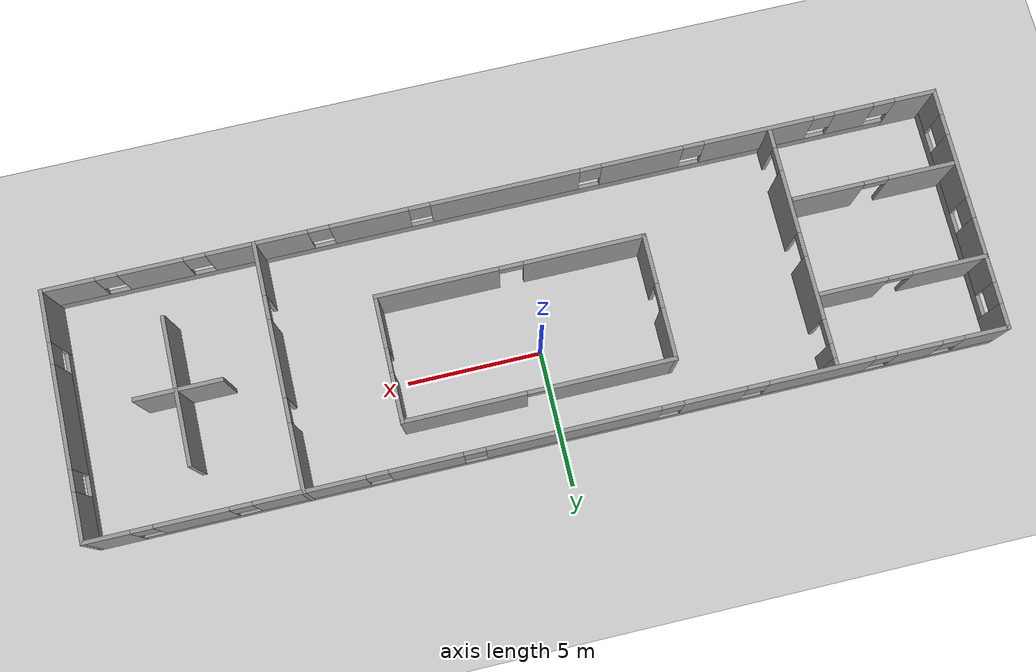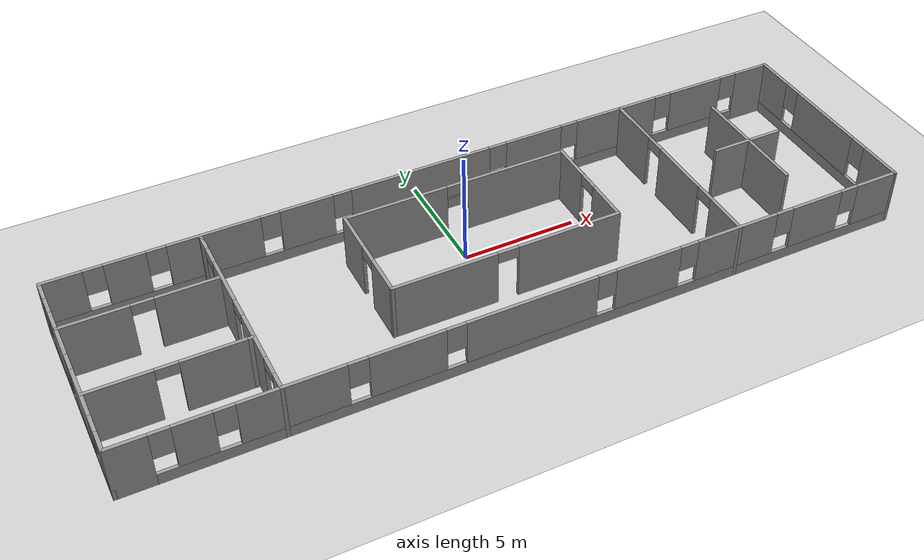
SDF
<sdf version="1.6">
 <world name="__default__">
  <gravity>0 0 -9.8</gravity>
  <magnetic_field>6e-06 2.3e-05 -4.2e-05</magnetic_field>
  <atmosphere type="adiabatic"/>
  <physics name="default_physics" default="0" type="ode">
   <max_step_size>0.001</max_step_size>
   <real_time_factor>1</real_time_factor>
   <real_time_update_rate>1000</real_time_update_rate>
  </physics>
  <scene><ambient>0.4 0.4 0.4 1</ambient><background>0.7 0.7 0.7 1</background><shadows>1</shadows></scene>
  <spherical_coordinates>
   <surface_model>EARTH_WGS84</surface_model>
   <latitude_deg>0</latitude_deg>
   <longitude_deg>0</longitude_deg>
   <elevation>0</elevation>
   <heading_deg>0</heading_deg>
  </spherical_coordinates>
  <model name="TakeTwo">
   <pose>0.369963 -1.2485 0 0 -0 0</pose>
   <link name="Wall_1">
    <pose>1e-06 -4.55 0 0 -0 0</pose>
    <visual name="Wall_1_Visual_0">
     <pose>-15.8307 0 1.25 0 -0 0</pose>
     <geometry><box><size>1.58863 0.15 2.5</size></box></geometry>
     <material>
      <script><uri>file://media/materials/scripts/gazebo.material</uri><name>Gazebo/Grey</name></script>
      <ambient>1 1 1 1</ambient>
     </material>
     <meta><layer>0</layer></meta>
    </visual>
    <collision name="Wall_1_Collision_0">
     <geometry><box><size>1.58863 0.15 2.5</size></box></geometry>
     <pose>-15.8307 0 1.25 0 -0 0</pose>
    </collision>
    <visual name="Wall_1_Visual_1">
     <pose>0.794313 0 0.25 0 -0 0</pose>
     <geometry><box><size>31.6614 0.15 0.5</size></box></geometry>
     <material>
      <script><uri>file://media/materials/scripts/gazebo.material</uri><name>Gazebo/Grey</name></script>
      <ambient>1 1 1 1</ambient>
     </material>
     <meta><layer>0</layer></meta>
    </visual>
    <collision name="Wall_1_Collision_1">
     <geometry><box><size>31.6614 0.15 0.5</size></box></geometry>
     <pose>0.794313 0 0.25 0 -0 0</pose>
    </collision>
    <visual name="Wall_1_Visual_2">
     <pose>-13.4926 0 1.5 0 -0 0</pose>
     <geometry><box><size>1.48762 0.15 2</size></box></geometry>
     <material>
      <script><uri>file://media/materials/scripts/gazebo.material</uri><name>Gazebo/Grey</name></script>
      <ambient>1 1 1 1</ambient>
     </material>
     <meta><layer>0</layer></meta>
    </visual>
    <collision name="Wall_1_Collision_2">
     <geometry><box><size>1.48762 0.15 2</size></box></geometry>
     <pose>-13.4926 0 1.5 0 -0 0</pose>
    </collision>
    <visual name="Wall_1_Visual_3">
     <pose>-9.88824 0 1.5 0 -0 0</pose>
     <geometry><box><size>4.12104 0.15 2</size></box></geometry>
     <material>
      <script><uri>file://media/materials/scripts/gazebo.material</uri><name>Gazebo/Grey</name></script>
      <ambient>1 1 1 1</ambient>
     </material>
     <meta><layer>0</layer></meta>
    </visual>
    <collision name="Wall_1_Collision_3">
     <geometry><box><size>4.12104 0.15 2</size></box></geometry>
     <pose>-9.88824 0 1.5 0 -0 0</pose>
    </collision>
    <visual name="Wall_1_Visual_4">
     <pose>-5.4992 0 1.5 0 -0 0</pose>
     <geometry><box><size>3.05703 0.15 2</size></box></geometry>
     <material>
      <script><uri>file://media/materials/scripts/gazebo.material</uri><name>Gazebo/Grey</name></script>
      <ambient>1 1 1 1</ambient>
     </material>
     <meta><layer>0</layer></meta>
    </visual>
    <collision name="Wall_1_Collision_4">
     <geometry><box><size>3.05703 0.15 2</size></box></geometry>
     <pose>-5.4992 0 1.5 0 -0 0</pose>
    </collision>
    <visual name="Wall_1_Visual_5">
     <pose>-0.391967 0 1.5 0 -0 0</pose>
     <geometry><box><size>5.55745 0.15 2</size></box></geometry>
     <material>
      <script><uri>file://media/materials/scripts/gazebo.material</uri><name>Gazebo/Grey</name></script>
      <ambient>1 1 1 1</ambient>
     </material>
     <meta><layer>0</layer></meta>
    </visual>
    <collision name="Wall_1_Collision_5">
     <geometry><box><size>5.55745 0.15 2</size></box></geometry>
     <pose>-0.391967 0 1.5 0 -0 0</pose>
    </collision>
    <visual name="Wall_1_Visual_6">
     <pose>4.63547 0 1.5 0 -0 0</pose>
     <geometry><box><size>2.89743 0.15 2</size></box></geometry>
     <material>
      <script><uri>file://media/materials/scripts/gazebo.material</uri><name>Gazebo/Grey</name></script>
      <ambient>1 1 1 1</ambient>
     </material>
     <meta><layer>0</layer></meta>
    </visual>
    <collision name="Wall_1_Collision_6">
     <geometry><box><size>2.89743 0.15 2</size></box></geometry>
     <pose>4.63547 0 1.5 0 -0 0</pose>
    </collision>
    <visual name="Wall_1_Visual_7">
     <pose>8.7452 0 1.5 0 -0 0</pose>
     <geometry><box><size>3.72203 0.15 2</size></box></geometry>
     <material>
      <script><uri>file://media/materials/scripts/gazebo.material</uri><name>Gazebo/Grey</name></script>
      <ambient>1 1 1 1</ambient>
     </material>
     <meta><layer>0</layer></meta>
    </visual>
    <collision name="Wall_1_Collision_7">
     <geometry><box><size>3.72203 0.15 2</size></box></geometry>
     <pose>8.7452 0 1.5 0 -0 0</pose>
    </collision>
    <visual name="Wall_1_Visual_8">
     <pose>12.6022 0 1.5 0 -0 0</pose>
     <geometry><box><size>2.39202 0.15 2</size></box></geometry>
     <material>
      <script><uri>file://media/materials/scripts/gazebo.material</uri><name>Gazebo/Grey</name></script>
      <ambient>1 1 1 1</ambient>
     </material>
     <meta><layer>0</layer></meta>
    </visual>
    <collision name="Wall_1_Collision_8">
     <geometry><box><size>2.39202 0.15 2</size></box></geometry>
     <pose>12.6022 0 1.5 0 -0 0</pose>
    </collision>
    <visual name="Wall_1_Visual_9">
     <pose>15.6116 0 1.5 0 -0 0</pose>
     <geometry><box><size>2.02676 0.15 2</size></box></geometry>
     <material>
      <script><uri>file://media/materials/scripts/gazebo.material</uri><name>Gazebo/Grey</name></script>
      <ambient>1 1 1 1</ambient>
     </material>
     <meta><layer>0</layer></meta>
    </visual>
    <collision name="Wall_1_Collision_9">
     <geometry><box><size>2.02676 0.15 2</size></box></geometry>
     <pose>15.6116 0 1.5 0 -0 0</pose>
    </collision>
    <visual name="Wall_1_Visual_10">
     <pose>-14.6364 0 1.9 0 -0 0</pose>
     <geometry><box><size>0.8 0.15 1.2</size></box></geometry>
     <material>
      <script><uri>file://media/materials/scripts/gazebo.material</uri><name>Gazebo/Grey</name></script>
      <ambient>1 1 1 1</ambient>
     </material>
     <meta><layer>0</layer></meta>
    </visual>
    <collision name="Wall_1_Collision_10">
     <geometry><box><size>0.8 0.15 1.2</size></box></geometry>
     <pose>-14.6364 0 1.9 0 -0 0</pose>
    </collision>
    <visual name="Wall_1_Visual_11">
     <pose>-12.3488 0 1.9 0 -0 0</pose>
     <geometry><box><size>0.8 0.15 1.2</size></box></geometry>
     <material>
      <script><uri>file://media/materials/scripts/gazebo.material</uri><name>Gazebo/Grey</name></script>
      <ambient>1 1 1 1</ambient>
     </material>
     <meta><layer>0</layer></meta>
    </visual>
    <collision name="Wall_1_Collision_11">
     <geometry><box><size>0.8 0.15 1.2</size></box></geometry>
     <pose>-12.3488 0 1.9 0 -0 0</pose>
    </collision>
    <visual name="Wall_1_Visual_12">
     <pose>-7.42772 0 1.9 0 -0 0</pose>
     <geometry><box><size>0.8 0.15 1.2</size></box></geometry>
     <material>
      <script><uri>file://media/materials/scripts/gazebo.material</uri><name>Gazebo/Grey</name></script>
      <ambient>1 1 1 1</ambient>
     </material>
     <meta><layer>0</layer></meta>
    </visual>
    <collision name="Wall_1_Collision_12">
     <geometry><box><size>0.8 0.15 1.2</size></box></geometry>
     <pose>-7.42772 0 1.9 0 -0 0</pose>
    </collision>
    <visual name="Wall_1_Visual_13">
     <pose>-3.57069 0 1.9 0 -0 0</pose>
     <geometry><box><size>0.8 0.15 1.2</size></box></geometry>
     <material>
      <script><uri>file://media/materials/scripts/gazebo.material</uri><name>Gazebo/Grey</name></script>
      <ambient>1 1 1 1</ambient>
     </material>
     <meta><layer>0</layer></meta>
    </visual>
    <collision name="Wall_1_Collision_13">
     <geometry><box><size>0.8 0.15 1.2</size></box></geometry>
     <pose>-3.57069 0 1.9 0 -0 0</pose>
    </collision>
    <visual name="Wall_1_Visual_14">
     <pose>2.78676 0 1.9 0 -0 0</pose>
     <geometry><box><size>0.8 0.15 1.2</size></box></geometry>
     <material>
      <script><uri>file://media/materials/scripts/gazebo.material</uri><name>Gazebo/Grey</name></script>
      <ambient>1 1 1 1</ambient>
     </material>
     <meta><layer>0</layer></meta>
    </visual>
    <collision name="Wall_1_Collision_14">
     <geometry><box><size>0.8 0.15 1.2</size></box></geometry>
     <pose>2.78676 0 1.9 0 -0 0</pose>
    </collision>
    <visual name="Wall_1_Visual_15">
     <pose>6.48419 0 1.9 0 -0 0</pose>
     <geometry><box><size>0.8 0.15 1.2</size></box></geometry>
     <material>
      <script><uri>file://media/materials/scripts/gazebo.material</uri><name>Gazebo/Grey</name></script>
      <ambient>1 1 1 1</ambient>
     </material>
     <meta><layer>0</layer></meta>
    </visual>
    <collision name="Wall_1_Collision_15">
     <geometry><box><size>0.8 0.15 1.2</size></box></geometry>
     <pose>6.48419 0 1.9 0 -0 0</pose>
    </collision>
    <visual name="Wall_1_Visual_16">
     <pose>11.0062 0 1.9 0 -0 0</pose>
     <geometry><box><size>0.8 0.15 1.2</size></box></geometry>
     <material>
      <script><uri>file://media/materials/scripts/gazebo.material</uri><name>Gazebo/Grey</name></script>
      <ambient>1 1 1 1</ambient>
     </material>
     <meta><layer>0</layer></meta>
    </visual>
    <collision name="Wall_1_Collision_16">
     <geometry><box><size>0.8 0.15 1.2</size></box></geometry>
     <pose>11.0062 0 1.9 0 -0 0</pose>
    </collision>
    <visual name="Wall_1_Visual_17">
     <pose>14.1982 0 1.9 0 -0 0</pose>
     <geometry><box><size>0.8 0.15 1.2</size></box></geometry>
     <material>
      <script><uri>file://media/materials/scripts/gazebo.material</uri><name>Gazebo/Grey</name></script>
      <ambient>1 1 1 1</ambient>
     </material>
     <meta><layer>0</layer></meta>
    </visual>
    <collision name="Wall_1_Collision_17">
     <geometry><box><size>0.8 0.15 1.2</size></box></geometry>
     <pose>14.1982 0 1.9 0 -0 0</pose>
    </collision>
   </link>
   <link name="Wall_11">
    <pose>-10.279 -0.125 0 0 -0 1.5708</pose>
    <visual name="Wall_11_Visual_0">
     <pose>-4.07739 0 1.25 0 -0 0</pose>
     <geometry><box><size>0.845229 0.15 2.5</size></box></geometry>
     <material>
      <script><uri>file://media/materials/scripts/gazebo.material</uri><name>Gazebo/Grey</name></script>
      <ambient>1 1 1 1</ambient>
     </material>
     <meta><layer>0</layer></meta>
    </visual>
    <collision name="Wall_11_Collision_0">
     <geometry><box><size>0.845229 0.15 2.5</size></box></geometry>
     <pose>-4.07739 0 1.25 0 -0 0</pose>
    </collision>
    <visual name="Wall_11_Visual_1">
     <pose>-1.55556 0 1.25 0 -0 0</pose>
     <geometry><box><size>2.39843 0.15 2.5</size></box></geometry>
     <material>
      <script><uri>file://media/materials/scripts/gazebo.material</uri><name>Gazebo/Grey</name></script>
      <ambient>1 1 1 1</ambient>
     </material>
     <meta><layer>0</layer></meta>
    </visual>
    <collision name="Wall_11_Collision_1">
     <geometry><box><size>2.39843 0.15 2.5</size></box></geometry>
     <pose>-1.55556 0 1.25 0 -0 0</pose>
    </collision>
    <visual name="Wall_11_Visual_2">
     <pose>1.72957 0 1.25 0 -0 0</pose>
     <geometry><box><size>2.37182 0.15 2.5</size></box></geometry>
     <material>
      <script><uri>file://media/materials/scripts/gazebo.material</uri><name>Gazebo/Grey</name></script>
      <ambient>1 1 1 1</ambient>
     </material>
     <meta><layer>0</layer></meta>
    </visual>
    <collision name="Wall_11_Collision_2">
     <geometry><box><size>2.37182 0.15 2.5</size></box></geometry>
     <pose>1.72957 0 1.25 0 -0 0</pose>
    </collision>
    <visual name="Wall_11_Visual_3">
     <pose>4.15774 0 1.25 0 -0 0</pose>
     <geometry><box><size>0.684522 0.15 2.5</size></box></geometry>
     <material>
      <script><uri>file://media/materials/scripts/gazebo.material</uri><name>Gazebo/Grey</name></script>
      <ambient>1 1 1 1</ambient>
     </material>
     <meta><layer>0</layer></meta>
    </visual>
    <collision name="Wall_11_Collision_3">
     <geometry><box><size>0.684522 0.15 2.5</size></box></geometry>
     <pose>4.15774 0 1.25 0 -0 0</pose>
    </collision>
    <visual name="Wall_11_Visual_4">
     <pose>-3.20477 0 2.25 0 -0 0</pose>
     <geometry><box><size>0.9 0.15 0.5</size></box></geometry>
     <material>
      <script><uri>file://media/materials/scripts/gazebo.material</uri><name>Gazebo/Grey</name></script>
      <ambient>1 1 1 1</ambient>
     </material>
     <meta><layer>0</layer></meta>
    </visual>
    <collision name="Wall_11_Collision_4">
     <geometry><box><size>0.9 0.15 0.5</size></box></geometry>
     <pose>-3.20477 0 2.25 0 -0 0</pose>
    </collision>
    <visual name="Wall_11_Visual_5">
     <pose>0.093653 0 2.25 0 -0 0</pose>
     <geometry><box><size>0.9 0.15 0.5</size></box></geometry>
     <material>
      <script><uri>file://media/materials/scripts/gazebo.material</uri><name>Gazebo/Grey</name></script>
      <ambient>1 1 1 1</ambient>
     </material>
     <meta><layer>0</layer></meta>
    </visual>
    <collision name="Wall_11_Collision_5">
     <geometry><box><size>0.9 0.15 0.5</size></box></geometry>
     <pose>0.093653 0 2.25 0 -0 0</pose>
    </collision>
    <visual name="Wall_11_Visual_6">
     <pose>3.36548 0 2.25 0 -0 0</pose>
     <geometry><box><size>0.9 0.15 0.5</size></box></geometry>
     <material>
      <script><uri>file://media/materials/scripts/gazebo.material</uri><name>Gazebo/Grey</name></script>
      <ambient>1 1 1 1</ambient>
     </material>
     <meta><layer>0</layer></meta>
    </visual>
    <collision name="Wall_11_Collision_6">
     <geometry><box><size>0.9 0.15 0.5</size></box></geometry>
     <pose>3.36548 0 2.25 0 -0 0</pose>
    </collision>
   </link>
   <link name="Wall_12">
    <collision name="Wall_12_Collision">
     <geometry><box><size>0.25 0.15 2.5</size></box></geometry>
     <pose>0 0 1.25 0 -0 0</pose>
    </collision>
    <visual name="Wall_12_Visual">
     <pose>0 0 1.25 0 -0 0</pose>
     <geometry><box><size>0.25 0.15 2.5</size></box></geometry>
     <material>
      <script><uri>file://media/materials/scripts/gazebo.material</uri><name>Gazebo/Grey</name></script>
      <ambient>1 1 1 1</ambient>
     </material>
     <meta><layer>0</layer></meta>
    </visual>
    <pose>-10.279 4.35 0 0 -0 1.5708</pose>
   </link>
   <link name="Wall_14">
    <pose>8.83989 0 0 0 -0 1.5708</pose>
    <visual name="Wall_14_Visual_0">
     <pose>-3.60388 0 1.25 0 -0 0</pose>
     <geometry><box><size>2.04224 0.15 2.5</size></box></geometry>
     <material>
      <script><uri>file://media/materials/scripts/gazebo.material</uri><name>Gazebo/Grey</name></script>
      <ambient>1 1 1 1</ambient>
     </material>
     <meta><layer>0</layer></meta>
    </visual>
    <collision name="Wall_14_Collision_0">
     <geometry><box><size>2.04224 0.15 2.5</size></box></geometry>
     <pose>-3.60388 0 1.25 0 -0 0</pose>
    </collision>
    <visual name="Wall_14_Visual_1">
     <pose>-0.244148 0 1.25 0 -0 0</pose>
     <geometry><box><size>2.87723 0.15 2.5</size></box></geometry>
     <material>
      <script><uri>file://media/materials/scripts/gazebo.material</uri><name>Gazebo/Grey</name></script>
      <ambient>1 1 1 1</ambient>
     </material>
     <meta><layer>0</layer></meta>
    </visual>
    <collision name="Wall_14_Collision_1">
     <geometry><box><size>2.87723 0.15 2.5</size></box></geometry>
     <pose>-0.244148 0 1.25 0 -0 0</pose>
    </collision>
    <visual name="Wall_14_Visual_2">
     <pose>3.35973 0 1.25 0 -0 0</pose>
     <geometry><box><size>2.53053 0.15 2.5</size></box></geometry>
     <material>
      <script><uri>file://media/materials/scripts/gazebo.material</uri><name>Gazebo/Grey</name></script>
      <ambient>1 1 1 1</ambient>
     </material>
     <meta><layer>0</layer></meta>
    </visual>
    <collision name="Wall_14_Collision_2">
     <geometry><box><size>2.53053 0.15 2.5</size></box></geometry>
     <pose>3.35973 0 1.25 0 -0 0</pose>
    </collision>
    <visual name="Wall_14_Visual_3">
     <pose>-2.13276 0 2.25 0 -0 0</pose>
     <geometry><box><size>0.9 0.15 0.5</size></box></geometry>
     <material>
      <script><uri>file://media/materials/scripts/gazebo.material</uri><name>Gazebo/Grey</name></script>
      <ambient>1 1 1 1</ambient>
     </material>
     <meta><layer>0</layer></meta>
    </visual>
    <collision name="Wall_14_Collision_3">
     <geometry><box><size>0.9 0.15 0.5</size></box></geometry>
     <pose>-2.13276 0 2.25 0 -0 0</pose>
    </collision>
    <visual name="Wall_14_Visual_4">
     <pose>1.64447 0 2.25 0 -0 0</pose>
     <geometry><box><size>0.9 0.15 0.5</size></box></geometry>
     <material>
      <script><uri>file://media/materials/scripts/gazebo.material</uri><name>Gazebo/Grey</name></script>
      <ambient>1 1 1 1</ambient>
     </material>
     <meta><layer>0</layer></meta>
    </visual>
    <collision name="Wall_14_Collision_4">
     <geometry><box><size>0.9 0.15 0.5</size></box></geometry>
     <pose>1.64447 0 2.25 0 -0 0</pose>
    </collision>
   </link>
   <link name="Wall_16">
    <pose>-13.4694 1.87395 0 0 -0 0</pose>
    <visual name="Wall_16_Visual_0">
     <pose>-1.73258 0 1.25 0 -0 0</pose>
     <geometry><box><size>2.78485 0.15 2.5</size></box></geometry>
     <material>
      <script><uri>file://media/materials/scripts/gazebo.material</uri><name>Gazebo/Grey</name></script>
      <ambient>1 1 1 1</ambient>
     </material>
     <meta><layer>0</layer></meta>
    </visual>
    <collision name="Wall_16_Collision_0">
     <geometry><box><size>2.78485 0.15 2.5</size></box></geometry>
     <pose>-1.73258 0 1.25 0 -0 0</pose>
    </collision>
    <visual name="Wall_16_Visual_1">
     <pose>1.84242 0 1.25 0 -0 0</pose>
     <geometry><box><size>2.56515 0.15 2.5</size></box></geometry>
     <material>
      <script><uri>file://media/materials/scripts/gazebo.material</uri><name>Gazebo/Grey</name></script>
      <ambient>1 1 1 1</ambient>
     </material>
     <meta><layer>0</layer></meta>
    </visual>
    <collision name="Wall_16_Collision_1">
     <geometry><box><size>2.56515 0.15 2.5</size></box></geometry>
     <pose>1.84242 0 1.25 0 -0 0</pose>
    </collision>
    <visual name="Wall_16_Visual_2">
     <pose>0.109846 0 2.25 0 -0 0</pose>
     <geometry><box><size>0.9 0.15 0.5</size></box></geometry>
     <material>
      <script><uri>file://media/materials/scripts/gazebo.material</uri><name>Gazebo/Grey</name></script>
      <ambient>1 1 1 1</ambient>
     </material>
     <meta><layer>0</layer></meta>
    </visual>
    <collision name="Wall_16_Collision_2">
     <geometry><box><size>0.9 0.15 0.5</size></box></geometry>
     <pose>0.109846 0 2.25 0 -0 0</pose>
    </collision>
   </link>
   <link name="Wall_18">
    <pose>-13.5 -1.7357 0 0 -0 0</pose>
    <visual name="Wall_18_Visual_0">
     <pose>-1.79708 0 1.25 0 -0 0</pose>
     <geometry><box><size>2.65584 0.15 2.5</size></box></geometry>
     <material>
      <script><uri>file://media/materials/scripts/gazebo.material</uri><name>Gazebo/Grey</name></script>
      <ambient>1 1 1 1</ambient>
     </material>
     <meta><layer>0</layer></meta>
    </visual>
    <collision name="Wall_18_Collision_0">
     <geometry><box><size>2.65584 0.15 2.5</size></box></geometry>
     <pose>-1.79708 0 1.25 0 -0 0</pose>
    </collision>
    <visual name="Wall_18_Visual_1">
     <pose>1.77792 0 1.25 0 -0 0</pose>
     <geometry><box><size>2.69416 0.15 2.5</size></box></geometry>
     <material>
      <script><uri>file://media/materials/scripts/gazebo.material</uri><name>Gazebo/Grey</name></script>
      <ambient>1 1 1 1</ambient>
     </material>
     <meta><layer>0</layer></meta>
    </visual>
    <collision name="Wall_18_Collision_1">
     <geometry><box><size>2.69416 0.15 2.5</size></box></geometry>
     <pose>1.77792 0 1.25 0 -0 0</pose>
    </collision>
    <visual name="Wall_18_Visual_2">
     <pose>-0.019165 0 2.25 0 -0 0</pose>
     <geometry><box><size>0.9 0.15 0.5</size></box></geometry>
     <material>
      <script><uri>file://media/materials/scripts/gazebo.material</uri><name>Gazebo/Grey</name></script>
      <ambient>1 1 1 1</ambient>
     </material>
     <meta><layer>0</layer></meta>
    </visual>
    <collision name="Wall_18_Collision_2">
     <geometry><box><size>0.9 0.15 0.5</size></box></geometry>
     <pose>-0.019165 0 2.25 0 -0 0</pose>
    </collision>
   </link>
   <link name="Wall_19">
    <collision name="Wall_19_Collision">
     <geometry><box><size>0.25 0.15 2.5</size></box></geometry>
     <pose>0 0 1.25 0 -0 0</pose>
    </collision>
    <visual name="Wall_19_Visual">
     <pose>0 0 1.25 0 -0 0</pose>
     <geometry><box><size>0.25 0.15 2.5</size></box></geometry>
     <material>
      <script><uri>file://media/materials/scripts/gazebo.material</uri><name>Gazebo/Grey</name></script>
      <ambient>1 1 1 1</ambient>
     </material>
     <meta><layer>0</layer></meta>
    </visual>
    <pose>-10.4 -1.7357 0 0 -0 0</pose>
   </link>
   <link name="Wall_2">
    <pose>16.55 0 0 0 -0 1.5708</pose>
    <visual name="Wall_2_Visual_0">
     <pose>-3.63208 0 1.25 0 -0 0</pose>
     <geometry><box><size>1.98584 0.15 2.5</size></box></geometry>
     <material>
      <script><uri>file://media/materials/scripts/gazebo.material</uri><name>Gazebo/Grey</name></script>
      <ambient>1 1 1 1</ambient>
     </material>
     <meta><layer>0</layer></meta>
    </visual>
    <collision name="Wall_2_Collision_0">
     <geometry><box><size>1.98584 0.15 2.5</size></box></geometry>
     <pose>-3.63208 0 1.25 0 -0 0</pose>
    </collision>
    <visual name="Wall_2_Visual_1">
     <pose>0.992918 0 0.25 0 -0 0</pose>
     <geometry><box><size>7.26416 0.15 0.5</size></box></geometry>
     <material>
      <script><uri>file://media/materials/scripts/gazebo.material</uri><name>Gazebo/Grey</name></script>
      <ambient>1 1 1 1</ambient>
     </material>
     <meta><layer>0</layer></meta>
    </visual>
    <collision name="Wall_2_Collision_1">
     <geometry><box><size>7.26416 0.15 0.5</size></box></geometry>
     <pose>0.992918 0 0.25 0 -0 0</pose>
    </collision>
    <visual name="Wall_2_Visual_2">
     <pose>0.061754 0 1.5 0 -0 0</pose>
     <geometry><box><size>3.80183 0.15 2</size></box></geometry>
     <material>
      <script><uri>file://media/materials/scripts/gazebo.material</uri><name>Gazebo/Grey</name></script>
      <ambient>1 1 1 1</ambient>
     </material>
     <meta><layer>0</layer></meta>
    </visual>
    <collision name="Wall_2_Collision_2">
     <geometry><box><size>3.80183 0.15 2</size></box></geometry>
     <pose>0.061754 0 1.5 0 -0 0</pose>
    </collision>
    <visual name="Wall_2_Visual_3">
     <pose>3.69384 0 1.5 0 -0 0</pose>
     <geometry><box><size>1.86233 0.15 2</size></box></geometry>
     <material>
      <script><uri>file://media/materials/scripts/gazebo.material</uri><name>Gazebo/Grey</name></script>
      <ambient>1 1 1 1</ambient>
     </material>
     <meta><layer>0</layer></meta>
    </visual>
    <collision name="Wall_2_Collision_3">
     <geometry><box><size>1.86233 0.15 2</size></box></geometry>
     <pose>3.69384 0 1.5 0 -0 0</pose>
    </collision>
    <visual name="Wall_2_Visual_4">
     <pose>-2.23916 0 1.9 0 -0 0</pose>
     <geometry><box><size>0.8 0.15 1.2</size></box></geometry>
     <material>
      <script><uri>file://media/materials/scripts/gazebo.material</uri><name>Gazebo/Grey</name></script>
      <ambient>1 1 1 1</ambient>
     </material>
     <meta><layer>0</layer></meta>
    </visual>
    <collision name="Wall_2_Collision_4">
     <geometry><box><size>0.8 0.15 1.2</size></box></geometry>
     <pose>-2.23916 0 1.9 0 -0 0</pose>
    </collision>
    <visual name="Wall_2_Visual_5">
     <pose>2.36267 0 1.9 0 -0 0</pose>
     <geometry><box><size>0.8 0.15 1.2</size></box></geometry>
     <material>
      <script><uri>file://media/materials/scripts/gazebo.material</uri><name>Gazebo/Grey</name></script>
      <ambient>1 1 1 1</ambient>
     </material>
     <meta><layer>0</layer></meta>
    </visual>
    <collision name="Wall_2_Collision_5">
     <geometry><box><size>0.8 0.15 1.2</size></box></geometry>
     <pose>2.36267 0 1.9 0 -0 0</pose>
    </collision>
   </link>
   <link name="Wall_21">
    <collision name="Wall_21_Collision">
     <geometry><box><size>5.5 0.15 2.5</size></box></geometry>
     <pose>0 0 1.25 0 -0 0</pose>
    </collision>
    <visual name="Wall_21_Visual">
     <pose>0 0 1.25 0 -0 0</pose>
     <geometry><box><size>5.5 0.15 2.5</size></box></geometry>
     <material>
      <script><uri>file://media/materials/scripts/gazebo.material</uri><name>Gazebo/Grey</name></script>
      <ambient>1 1 1 1</ambient>
     </material>
     <meta><layer>0</layer></meta>
    </visual>
    <pose>12.4958 0.060074 0 0 0 -1.5708</pose>
   </link>
   <link name="Wall_23">
    <collision name="Wall_23_Collision">
     <geometry><box><size>3.25 0.15 2.5</size></box></geometry>
     <pose>0 0 1.25 0 -0 0</pose>
    </collision>
    <visual name="Wall_23_Visual">
     <pose>0 0 1.25 0 -0 0</pose>
     <geometry><box><size>3.25 0.15 2.5</size></box></geometry>
     <material>
      <script><uri>file://media/materials/scripts/gazebo.material</uri><name>Gazebo/Grey</name></script>
      <ambient>1 1 1 1</ambient>
     </material>
     <meta><layer>0</layer></meta>
    </visual>
    <pose>12.4232 0.048454 0 0 -0 0</pose>
   </link>
   <link name="Wall_3">
    <pose>1e-06 4.55 0 0 -0 3.14159</pose>
    <visual name="Wall_3_Visual_0">
     <pose>-15.7579 0 1.25 0 -0 0</pose>
     <geometry><box><size>1.73416 0.15 2.5</size></box></geometry>
     <material>
      <script><uri>file://media/materials/scripts/gazebo.material</uri><name>Gazebo/Grey</name></script>
      <ambient>1 1 1 1</ambient>
     </material>
     <meta><layer>0</layer></meta>
    </visual>
    <collision name="Wall_3_Collision_0">
     <geometry><box><size>1.73416 0.15 2.5</size></box></geometry>
     <pose>-15.7579 0 1.25 0 -0 0</pose>
    </collision>
    <visual name="Wall_3_Visual_1">
     <pose>0.867078 0 0.25 0 -0 0</pose>
     <geometry><box><size>31.5158 0.15 0.5</size></box></geometry>
     <material>
      <script><uri>file://media/materials/scripts/gazebo.material</uri><name>Gazebo/Grey</name></script>
      <ambient>1 1 1 1</ambient>
     </material>
     <meta><layer>0</layer></meta>
    </visual>
    <collision name="Wall_3_Collision_1">
     <geometry><box><size>31.5158 0.15 0.5</size></box></geometry>
     <pose>0.867078 0 0.25 0 -0 0</pose>
    </collision>
    <visual name="Wall_3_Visual_2">
     <pose>-12.7618 0 1.5 0 -0 0</pose>
     <geometry><box><size>2.65803 0.15 2</size></box></geometry>
     <material>
      <script><uri>file://media/materials/scripts/gazebo.material</uri><name>Gazebo/Grey</name></script>
      <ambient>1 1 1 1</ambient>
     </material>
     <meta><layer>0</layer></meta>
    </visual>
    <collision name="Wall_3_Collision_2">
     <geometry><box><size>2.65803 0.15 2</size></box></geometry>
     <pose>-12.7618 0 1.5 0 -0 0</pose>
    </collision>
    <visual name="Wall_3_Visual_3">
     <pose>-8.6388 0 1.5 0 -0 0</pose>
     <geometry><box><size>3.98803 0.15 2</size></box></geometry>
     <material>
      <script><uri>file://media/materials/scripts/gazebo.material</uri><name>Gazebo/Grey</name></script>
      <ambient>1 1 1 1</ambient>
     </material>
     <meta><layer>0</layer></meta>
    </visual>
    <collision name="Wall_3_Collision_3">
     <geometry><box><size>3.98803 0.15 2</size></box></geometry>
     <pose>-8.6388 0 1.5 0 -0 0</pose>
    </collision>
    <visual name="Wall_3_Visual_4">
     <pose>-4.51577 0 1.5 0 -0 0</pose>
     <geometry><box><size>2.65803 0.15 2</size></box></geometry>
     <material>
      <script><uri>file://media/materials/scripts/gazebo.material</uri><name>Gazebo/Grey</name></script>
      <ambient>1 1 1 1</ambient>
     </material>
     <meta><layer>0</layer></meta>
    </visual>
    <collision name="Wall_3_Collision_4">
     <geometry><box><size>2.65803 0.15 2</size></box></geometry>
     <pose>-4.51577 0 1.5 0 -0 0</pose>
    </collision>
    <visual name="Wall_3_Visual_5">
     <pose>0.76437 0 1.5 0 -0 0</pose>
     <geometry><box><size>6.30225 0.15 2</size></box></geometry>
     <material>
      <script><uri>file://media/materials/scripts/gazebo.material</uri><name>Gazebo/Grey</name></script>
      <ambient>1 1 1 1</ambient>
     </material>
     <meta><layer>0</layer></meta>
    </visual>
    <collision name="Wall_3_Collision_5">
     <geometry><box><size>6.30225 0.15 2</size></box></geometry>
     <pose>0.76437 0 1.5 0 -0 0</pose>
    </collision>
    <visual name="Wall_3_Visual_6">
     <pose>5.85831 0 1.5 0 -0 0</pose>
     <geometry><box><size>2.28562 0.15 2</size></box></geometry>
     <material>
      <script><uri>file://media/materials/scripts/gazebo.material</uri><name>Gazebo/Grey</name></script>
      <ambient>1 1 1 1</ambient>
     </material>
     <meta><layer>0</layer></meta>
    </visual>
    <collision name="Wall_3_Collision_6">
     <geometry><box><size>2.28562 0.15 2</size></box></geometry>
     <pose>5.85831 0 1.5 0 -0 0</pose>
    </collision>
    <visual name="Wall_3_Visual_7">
     <pose>9.72864 0 1.5 0 -0 0</pose>
     <geometry><box><size>3.85503 0.15 2</size></box></geometry>
     <material>
      <script><uri>file://media/materials/scripts/gazebo.material</uri><name>Gazebo/Grey</name></script>
      <ambient>1 1 1 1</ambient>
     </material>
     <meta><layer>0</layer></meta>
    </visual>
    <collision name="Wall_3_Collision_7">
     <geometry><box><size>3.85503 0.15 2</size></box></geometry>
     <pose>9.72864 0 1.5 0 -0 0</pose>
    </collision>
    <visual name="Wall_3_Visual_8">
     <pose>13.2931 0 1.5 0 -0 0</pose>
     <geometry><box><size>1.67382 0.15 2</size></box></geometry>
     <material>
      <script><uri>file://media/materials/scripts/gazebo.material</uri><name>Gazebo/Grey</name></script>
      <ambient>1 1 1 1</ambient>
     </material>
     <meta><layer>0</layer></meta>
    </visual>
    <collision name="Wall_3_Collision_8">
     <geometry><box><size>1.67382 0.15 2</size></box></geometry>
     <pose>13.2931 0 1.5 0 -0 0</pose>
    </collision>
    <visual name="Wall_3_Visual_9">
     <pose>15.7775 0 1.5 0 -0 0</pose>
     <geometry><box><size>1.69503 0.15 2</size></box></geometry>
     <material>
      <script><uri>file://media/materials/scripts/gazebo.material</uri><name>Gazebo/Grey</name></script>
      <ambient>1 1 1 1</ambient>
     </material>
     <meta><layer>0</layer></meta>
    </visual>
    <collision name="Wall_3_Collision_9">
     <geometry><box><size>1.69503 0.15 2</size></box></geometry>
     <pose>15.7775 0 1.5 0 -0 0</pose>
    </collision>
    <visual name="Wall_3_Visual_10">
     <pose>-14.4908 0 1.9 0 -0 0</pose>
     <geometry><box><size>0.8 0.15 1.2</size></box></geometry>
     <material>
      <script><uri>file://media/materials/scripts/gazebo.material</uri><name>Gazebo/Grey</name></script>
      <ambient>1 1 1 1</ambient>
     </material>
     <meta><layer>0</layer></meta>
    </visual>
    <collision name="Wall_3_Collision_10">
     <geometry><box><size>0.8 0.15 1.2</size></box></geometry>
     <pose>-14.4908 0 1.9 0 -0 0</pose>
    </collision>
    <visual name="Wall_3_Visual_11">
     <pose>-11.0328 0 1.9 0 -0 0</pose>
     <geometry><box><size>0.8 0.15 1.2</size></box></geometry>
     <material>
      <script><uri>file://media/materials/scripts/gazebo.material</uri><name>Gazebo/Grey</name></script>
      <ambient>1 1 1 1</ambient>
     </material>
     <meta><layer>0</layer></meta>
    </visual>
    <collision name="Wall_3_Collision_11">
     <geometry><box><size>0.8 0.15 1.2</size></box></geometry>
     <pose>-11.0328 0 1.9 0 -0 0</pose>
    </collision>
    <visual name="Wall_3_Visual_12">
     <pose>-6.24478 0 1.9 0 -0 0</pose>
     <geometry><box><size>0.8 0.15 1.2</size></box></geometry>
     <material>
      <script><uri>file://media/materials/scripts/gazebo.material</uri><name>Gazebo/Grey</name></script>
      <ambient>1 1 1 1</ambient>
     </material>
     <meta><layer>0</layer></meta>
    </visual>
    <collision name="Wall_3_Collision_12">
     <geometry><box><size>0.8 0.15 1.2</size></box></geometry>
     <pose>-6.24478 0 1.9 0 -0 0</pose>
    </collision>
    <visual name="Wall_3_Visual_13">
     <pose>-2.78676 0 1.9 0 -0 0</pose>
     <geometry><box><size>0.8 0.15 1.2</size></box></geometry>
     <material>
      <script><uri>file://media/materials/scripts/gazebo.material</uri><name>Gazebo/Grey</name></script>
      <ambient>1 1 1 1</ambient>
     </material>
     <meta><layer>0</layer></meta>
    </visual>
    <collision name="Wall_3_Collision_13">
     <geometry><box><size>0.8 0.15 1.2</size></box></geometry>
     <pose>-2.78676 0 1.9 0 -0 0</pose>
    </collision>
    <visual name="Wall_3_Visual_14">
     <pose>4.3155 0 1.9 0 -0 0</pose>
     <geometry><box><size>0.8 0.15 1.2</size></box></geometry>
     <material>
      <script><uri>file://media/materials/scripts/gazebo.material</uri><name>Gazebo/Grey</name></script>
      <ambient>1 1 1 1</ambient>
     </material>
     <meta><layer>0</layer></meta>
    </visual>
    <collision name="Wall_3_Collision_14">
     <geometry><box><size>0.8 0.15 1.2</size></box></geometry>
     <pose>4.3155 0 1.9 0 -0 0</pose>
    </collision>
    <visual name="Wall_3_Visual_15">
     <pose>7.40112 0 1.9 0 -0 0</pose>
     <geometry><box><size>0.8 0.15 1.2</size></box></geometry>
     <material>
      <script><uri>file://media/materials/scripts/gazebo.material</uri><name>Gazebo/Grey</name></script>
      <ambient>1 1 1 1</ambient>
     </material>
     <meta><layer>0</layer></meta>
    </visual>
    <collision name="Wall_3_Collision_15">
     <geometry><box><size>0.8 0.15 1.2</size></box></geometry>
     <pose>7.40112 0 1.9 0 -0 0</pose>
    </collision>
    <visual name="Wall_3_Visual_16">
     <pose>12.0562 0 1.9 0 -0 0</pose>
     <geometry><box><size>0.8 0.15 1.2</size></box></geometry>
     <material>
      <script><uri>file://media/materials/scripts/gazebo.material</uri><name>Gazebo/Grey</name></script>
      <ambient>1 1 1 1</ambient>
     </material>
     <meta><layer>0</layer></meta>
    </visual>
    <collision name="Wall_3_Collision_16">
     <geometry><box><size>0.8 0.15 1.2</size></box></geometry>
     <pose>12.0562 0 1.9 0 -0 0</pose>
    </collision>
    <visual name="Wall_3_Visual_17">
     <pose>14.53 0 1.9 0 -0 0</pose>
     <geometry><box><size>0.8 0.15 1.2</size></box></geometry>
     <material>
      <script><uri>file://media/materials/scripts/gazebo.material</uri><name>Gazebo/Grey</name></script>
      <ambient>1 1 1 1</ambient>
     </material>
     <meta><layer>0</layer></meta>
    </visual>
    <collision name="Wall_3_Collision_17">
     <geometry><box><size>0.8 0.15 1.2</size></box></geometry>
     <pose>14.53 0 1.9 0 -0 0</pose>
    </collision>
   </link>
   <link name="Wall_4">
    <pose>-16.55 0 0 0 0 -1.5708</pose>
    <visual name="Wall_4_Visual_0">
     <pose>-4.14604 0 1.25 0 -0 0</pose>
     <geometry><box><size>0.957922 0.15 2.5</size></box></geometry>
     <material>
      <script><uri>file://media/materials/scripts/gazebo.material</uri><name>Gazebo/Grey</name></script>
      <ambient>1 1 1 1</ambient>
     </material>
     <meta><layer>0</layer></meta>
    </visual>
    <collision name="Wall_4_Collision_0">
     <geometry><box><size>0.957922 0.15 2.5</size></box></geometry>
     <pose>-4.14604 0 1.25 0 -0 0</pose>
    </collision>
    <visual name="Wall_4_Visual_1">
     <pose>0.478961 0 0.25 0 -0 0</pose>
     <geometry><box><size>8.29208 0.15 0.5</size></box></geometry>
     <material>
      <script><uri>file://media/materials/scripts/gazebo.material</uri><name>Gazebo/Grey</name></script>
      <ambient>1 1 1 1</ambient>
     </material>
     <meta><layer>0</layer></meta>
    </visual>
    <collision name="Wall_4_Collision_1">
     <geometry><box><size>8.29208 0.15 0.5</size></box></geometry>
     <pose>0.478961 0 0.25 0 -0 0</pose>
    </collision>
    <visual name="Wall_4_Visual_2">
     <pose>-1.64447 0 1.5 0 -0 0</pose>
     <geometry><box><size>2.44522 0.15 2</size></box></geometry>
     <material>
      <script><uri>file://media/materials/scripts/gazebo.material</uri><name>Gazebo/Grey</name></script>
      <ambient>1 1 1 1</ambient>
     </material>
     <meta><layer>0</layer></meta>
    </visual>
    <collision name="Wall_4_Collision_2">
     <geometry><box><size>2.44522 0.15 2</size></box></geometry>
     <pose>-1.64447 0 1.5 0 -0 0</pose>
    </collision>
    <visual name="Wall_4_Visual_3">
     <pose>1.60076 0 1.5 0 -0 0</pose>
     <geometry><box><size>2.44522 0.15 2</size></box></geometry>
     <material>
      <script><uri>file://media/materials/scripts/gazebo.material</uri><name>Gazebo/Grey</name></script>
      <ambient>1 1 1 1</ambient>
     </material>
     <meta><layer>0</layer></meta>
    </visual>
    <collision name="Wall_4_Collision_3">
     <geometry><box><size>2.44522 0.15 2</size></box></geometry>
     <pose>1.60076 0 1.5 0 -0 0</pose>
    </collision>
    <visual name="Wall_4_Visual_4">
     <pose>4.12418 0 1.5 0 -0 0</pose>
     <geometry><box><size>1.00163 0.15 2</size></box></geometry>
     <material>
      <script><uri>file://media/materials/scripts/gazebo.material</uri><name>Gazebo/Grey</name></script>
      <ambient>1 1 1 1</ambient>
     </material>
     <meta><layer>0</layer></meta>
    </visual>
    <collision name="Wall_4_Collision_4">
     <geometry><box><size>1.00163 0.15 2</size></box></geometry>
     <pose>4.12418 0 1.5 0 -0 0</pose>
    </collision>
    <visual name="Wall_4_Visual_5">
     <pose>-3.26708 0 1.9 0 -0 0</pose>
     <geometry><box><size>0.8 0.15 1.2</size></box></geometry>
     <material>
      <script><uri>file://media/materials/scripts/gazebo.material</uri><name>Gazebo/Grey</name></script>
      <ambient>1 1 1 1</ambient>
     </material>
     <meta><layer>0</layer></meta>
    </visual>
    <collision name="Wall_4_Collision_5">
     <geometry><box><size>0.8 0.15 1.2</size></box></geometry>
     <pose>-3.26708 0 1.9 0 -0 0</pose>
    </collision>
    <visual name="Wall_4_Visual_6">
     <pose>-0.021854 0 1.9 0 -0 0</pose>
     <geometry><box><size>0.8 0.15 1.2</size></box></geometry>
     <material>
      <script><uri>file://media/materials/scripts/gazebo.material</uri><name>Gazebo/Grey</name></script>
      <ambient>1 1 1 1</ambient>
     </material>
     <meta><layer>0</layer></meta>
    </visual>
    <collision name="Wall_4_Collision_6">
     <geometry><box><size>0.8 0.15 1.2</size></box></geometry>
     <pose>-0.021854 0 1.9 0 -0 0</pose>
    </collision>
    <visual name="Wall_4_Visual_7">
     <pose>3.22337 0 1.9 0 -0 0</pose>
     <geometry><box><size>0.8 0.15 1.2</size></box></geometry>
     <material>
      <script><uri>file://media/materials/scripts/gazebo.material</uri><name>Gazebo/Grey</name></script>
      <ambient>1 1 1 1</ambient>
     </material>
     <meta><layer>0</layer></meta>
    </visual>
    <collision name="Wall_4_Collision_7">
     <geometry><box><size>0.8 0.15 1.2</size></box></geometry>
     <pose>3.22337 0 1.9 0 -0 0</pose>
    </collision>
   </link>
   <link name="Wall_6">
    <pose>-4.83394 0.656072 0 0 -0 1.5708</pose>
    <visual name="Wall_6_Visual_0">
     <pose>-1.43066 0 1.25 0 -0 0</pose>
     <geometry><box><size>1.88868 0.15 2.5</size></box></geometry>
     <material>
      <script><uri>file://media/materials/scripts/gazebo.material</uri><name>Gazebo/Grey</name></script>
      <ambient>1 1 1 1</ambient>
     </material>
     <meta><layer>0</layer></meta>
    </visual>
    <collision name="Wall_6_Collision_0">
     <geometry><box><size>1.88868 0.15 2.5</size></box></geometry>
     <pose>-1.43066 0 1.25 0 -0 0</pose>
    </collision>
    <visual name="Wall_6_Visual_1">
     <pose>1.39434 0 1.25 0 -0 0</pose>
     <geometry><box><size>1.96132 0.15 2.5</size></box></geometry>
     <material>
      <script><uri>file://media/materials/scripts/gazebo.material</uri><name>Gazebo/Grey</name></script>
      <ambient>1 1 1 1</ambient>
     </material>
     <meta><layer>0</layer></meta>
    </visual>
    <collision name="Wall_6_Collision_1">
     <geometry><box><size>1.96132 0.15 2.5</size></box></geometry>
     <pose>1.39434 0 1.25 0 -0 0</pose>
    </collision>
    <visual name="Wall_6_Visual_2">
     <pose>-0.036323 0 2.25 0 -0 0</pose>
     <geometry><box><size>0.9 0.15 0.5</size></box></geometry>
     <material>
      <script><uri>file://media/materials/scripts/gazebo.material</uri><name>Gazebo/Grey</name></script>
      <ambient>1 1 1 1</ambient>
     </material>
     <meta><layer>0</layer></meta>
    </visual>
    <collision name="Wall_6_Collision_2">
     <geometry><box><size>0.9 0.15 0.5</size></box></geometry>
     <pose>-0.036323 0 2.25 0 -0 0</pose>
    </collision>
   </link>
   <link name="Wall_7">
    <pose>0.091058 2.95607 0 0 -0 0</pose>
    <visual name="Wall_7_Visual_0">
     <pose>-2.72499 0 1.25 0 -0 0</pose>
     <geometry><box><size>4.55003 0.15 2.5</size></box></geometry>
     <material>
      <script><uri>file://media/materials/scripts/gazebo.material</uri><name>Gazebo/Grey</name></script>
      <ambient>1 1 1 1</ambient>
     </material>
     <meta><layer>0</layer></meta>
    </visual>
    <collision name="Wall_7_Collision_0">
     <geometry><box><size>4.55003 0.15 2.5</size></box></geometry>
     <pose>-2.72499 0 1.25 0 -0 0</pose>
    </collision>
    <visual name="Wall_7_Visual_1">
     <pose>2.72501 0 1.25 0 -0 0</pose>
     <geometry><box><size>4.54997 0.15 2.5</size></box></geometry>
     <material>
      <script><uri>file://media/materials/scripts/gazebo.material</uri><name>Gazebo/Grey</name></script>
      <ambient>1 1 1 1</ambient>
     </material>
     <meta><layer>0</layer></meta>
    </visual>
    <collision name="Wall_7_Collision_1">
     <geometry><box><size>4.54997 0.15 2.5</size></box></geometry>
     <pose>2.72501 0 1.25 0 -0 0</pose>
    </collision>
    <visual name="Wall_7_Visual_2">
     <pose>2.7e-05 0 2.25 0 -0 0</pose>
     <geometry><box><size>0.9 0.15 0.5</size></box></geometry>
     <material>
      <script><uri>file://media/materials/scripts/gazebo.material</uri><name>Gazebo/Grey</name></script>
      <ambient>1 1 1 1</ambient>
     </material>
     <meta><layer>0</layer></meta>
    </visual>
    <collision name="Wall_7_Collision_2">
     <geometry><box><size>0.9 0.15 0.5</size></box></geometry>
     <pose>2.7e-05 0 2.25 0 -0 0</pose>
    </collision>
   </link>
   <link name="Wall_8">
    <pose>5.01606 0.656072 0 0 0 -1.5708</pose>
    <visual name="Wall_8_Visual_0">
     <pose>-1.44022 0 1.25 0 -0 0</pose>
     <geometry><box><size>1.86955 0.15 2.5</size></box></geometry>
     <material>
      <script><uri>file://media/materials/scripts/gazebo.material</uri><name>Gazebo/Grey</name></script>
      <ambient>1 1 1 1</ambient>
     </material>
     <meta><layer>0</layer></meta>
    </visual>
    <collision name="Wall_8_Collision_0">
     <geometry><box><size>1.86955 0.15 2.5</size></box></geometry>
     <pose>-1.44022 0 1.25 0 -0 0</pose>
    </collision>
    <visual name="Wall_8_Visual_1">
     <pose>1.38478 0 1.25 0 -0 0</pose>
     <geometry><box><size>1.98045 0.15 2.5</size></box></geometry>
     <material>
      <script><uri>file://media/materials/scripts/gazebo.material</uri><name>Gazebo/Grey</name></script>
      <ambient>1 1 1 1</ambient>
     </material>
     <meta><layer>0</layer></meta>
    </visual>
    <collision name="Wall_8_Collision_1">
     <geometry><box><size>1.98045 0.15 2.5</size></box></geometry>
     <pose>1.38478 0 1.25 0 -0 0</pose>
    </collision>
    <visual name="Wall_8_Visual_2">
     <pose>-0.055448 0 2.25 0 -0 0</pose>
     <geometry><box><size>0.9 0.15 0.5</size></box></geometry>
     <material>
      <script><uri>file://media/materials/scripts/gazebo.material</uri><name>Gazebo/Grey</name></script>
      <ambient>1 1 1 1</ambient>
     </material>
     <meta><layer>0</layer></meta>
    </visual>
    <collision name="Wall_8_Collision_2">
     <geometry><box><size>0.9 0.15 0.5</size></box></geometry>
     <pose>-0.055448 0 2.25 0 -0 0</pose>
    </collision>
   </link>
   <link name="Wall_9">
    <pose>0.091058 -1.64393 0 0 -0 3.14159</pose>
    <visual name="Wall_9_Visual_0">
     <pose>-2.70972 0 1.25 0 -0 0</pose>
     <geometry><box><size>4.58056 0.15 2.5</size></box></geometry>
     <material>
      <script><uri>file://media/materials/scripts/gazebo.material</uri><name>Gazebo/Grey</name></script>
      <ambient>1 1 1 1</ambient>
     </material>
     <meta><layer>0</layer></meta>
    </visual>
    <collision name="Wall_9_Collision_0">
     <geometry><box><size>4.58056 0.15 2.5</size></box></geometry>
     <pose>-2.70972 0 1.25 0 -0 0</pose>
    </collision>
    <visual name="Wall_9_Visual_1">
     <pose>2.74028 0 1.25 0 -0 0</pose>
     <geometry><box><size>4.51944 0.15 2.5</size></box></geometry>
     <material>
      <script><uri>file://media/materials/scripts/gazebo.material</uri><name>Gazebo/Grey</name></script>
      <ambient>1 1 1 1</ambient>
     </material>
     <meta><layer>0</layer></meta>
    </visual>
    <collision name="Wall_9_Collision_1">
     <geometry><box><size>4.51944 0.15 2.5</size></box></geometry>
     <pose>2.74028 0 1.25 0 -0 0</pose>
    </collision>
    <visual name="Wall_9_Visual_2">
     <pose>0.030563 0 2.25 0 -0 0</pose>
     <geometry><box><size>0.9 0.15 0.5</size></box></geometry>
     <material>
      <script><uri>file://media/materials/scripts/gazebo.material</uri><name>Gazebo/Grey</name></script>
      <ambient>1 1 1 1</ambient>
     </material>
     <meta><layer>0</layer></meta>
    </visual>
    <collision name="Wall_9_Collision_2">
     <geometry><box><size>0.9 0.15 0.5</size></box></geometry>
     <pose>0.030563 0 2.25 0 -0 0</pose>
    </collision>
   </link>
   <static>1</static>
  </model>
  <model name="ground_plane">
   <static>1</static>
   <link name="link">
    <collision name="collision">
     <geometry><plane><normal>0 0 1</normal><size>100 100</size></plane></geometry>
     <surface>
      <contact><collide_bitmask>65535</collide_bitmask></contact>
      <friction><ode><mu>100</mu><mu2>50</mu2></ode></friction>
     </surface>
    </collision>
    <visual name="visual">
     <cast_shadows>0</cast_shadows>
     <geometry><plane><normal>0 0 1</normal><size>100 100</size></plane></geometry>
     <material>
      <script><uri>file://media/materials/scripts/gazebo.material</uri><name>Gazebo/Grey</name></script>
     </material>
    </visual>
   </link>
   <pose>5.51007 -5.31101 0 0 -0 0</pose>
  </model>
  <light name="user_directional_light_0" type="directional">
   <pose>-5.82382 -0.959222 1 0 -0 0</pose>
   <diffuse>0.5 0.5 0.5 1</diffuse>
   <specular>0.1 0.1 0.1 1</specular>
   <direction>0.1 0.1 -0.9</direction>
   <attenuation>
    <range>20</range>
    <constant>0.5</constant>
    <linear>0.01</linear>
    <quadratic>0.001</quadratic>
   </attenuation>
  </light>
 </world>
</sdf>
